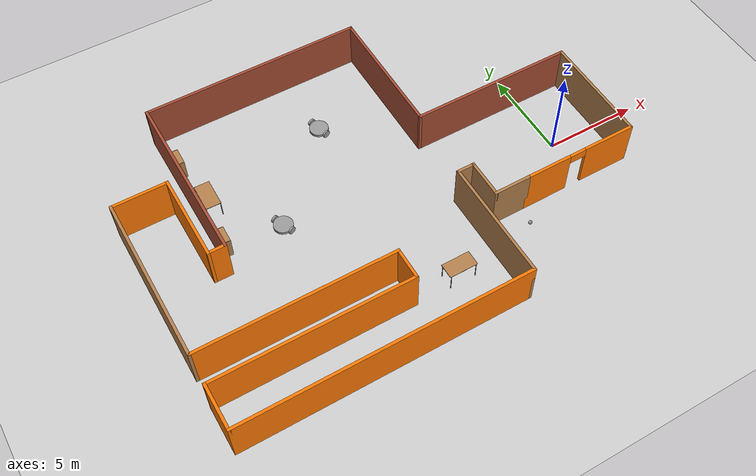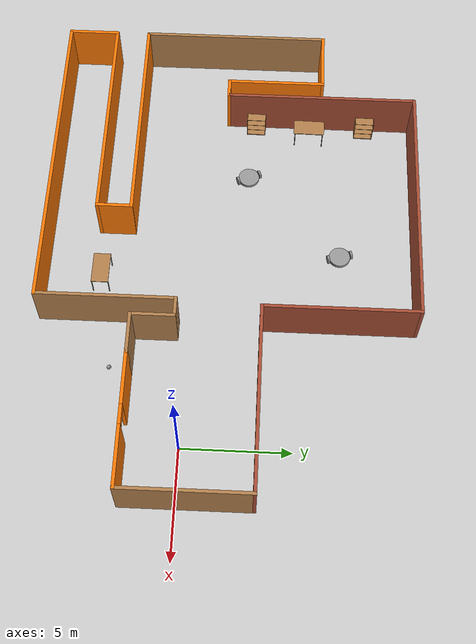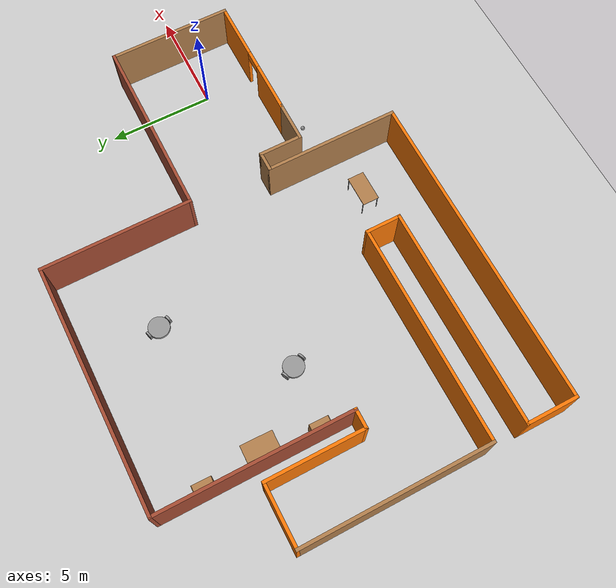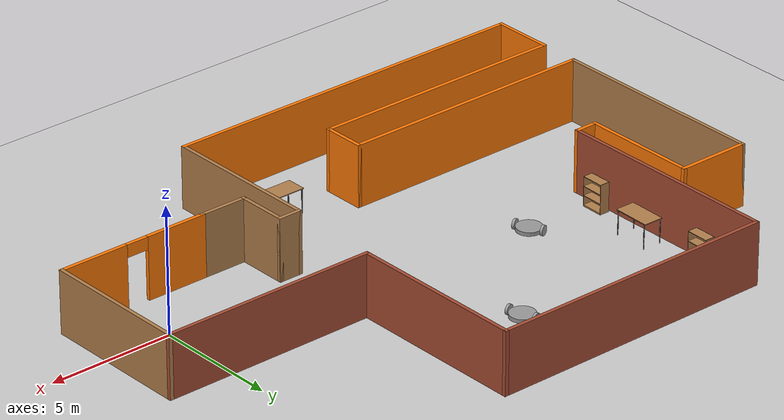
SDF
<sdf version="1.7">
 <world name="default">
  <plugin name="hello" filename="libhello.so"/>
  <light name="sun" type="directional">
   <pose>0 0 10 0 -0 0</pose>
   <diffuse>0.8 0.8 0.8 1</diffuse>
   <specular>0.2 0.2 0.2 1</specular>
   <attenuation>
    <range>1000</range>
    <constant>0.9</constant>
    <linear>0.01</linear>
    <quadratic>0.001</quadratic>
   </attenuation>
   <direction>-0.5 0.1 -0.9</direction>
   <spot><inner_angle>0</inner_angle><outer_angle>0</outer_angle><falloff>0</falloff></spot>
  </light>
  <model name="ground_plane">
   <static>1</static>
   <link name="link">
    <collision name="collision">
     <geometry><plane><normal>0 0 1</normal><size>100 100</size></plane></geometry>
     <surface>
      <contact><collide_bitmask>65535</collide_bitmask></contact>
      <friction><ode><mu>100</mu><mu2>50</mu2></ode></friction>
     </surface>
    </collision>
    <visual name="visual">
     <cast_shadows>0</cast_shadows>
     <geometry><plane><normal>0 0 1</normal><size>100 100</size></plane></geometry>
     <material>
      <script><uri>file://media/materials/scripts/gazebo.material</uri><name>Gazebo/Grey</name></script>
     </material>
    </visual>
   </link>
  </model>
  <gravity>0 0 -9.8</gravity>
  <magnetic_field>6e-06 2.3e-05 -4.2e-05</magnetic_field>
  <atmosphere type="adiabatic"/>
  <physics type="ode">
   <max_step_size>0.001</max_step_size>
   <real_time_factor>1</real_time_factor>
   <real_time_update_rate>1000</real_time_update_rate>
  </physics>
  <scene><ambient>0.4 0.4 0.4 1</ambient><background>0.7 0.7 0.7 1</background><shadows>1</shadows></scene>
  <spherical_coordinates>
   <surface_model>EARTH_WGS84</surface_model>
   <latitude_deg>0</latitude_deg>
   <longitude_deg>0</longitude_deg>
   <elevation>0</elevation>
   <heading_deg>0</heading_deg>
  </spherical_coordinates>
  <model name="Building">
   <pose>-9.30095 1.8624 0 0 -0 0</pose>
   <link name="Wall_0">
    <pose>8.9 -4.273 0 0 -0 0</pose>
    <visual name="Wall_0_Visual_0">
     <pose>-1.8625 0 1.25 0 -0 0</pose>
     <geometry><box><size>2.525 0.15 2.5</size></box></geometry>
     <material>
      <script><uri>file://media/materials/scripts/gazebo.material</uri><name>Gazebo/Grey</name></script>
      <ambient>0.996078 0.47451 0.0196078 1</ambient>
     </material>
     <meta><layer>0</layer></meta>
    </visual>
    <collision name="Wall_0_Collision_0">
     <geometry><box><size>2.525 0.15 2.5</size></box></geometry>
     <pose>-1.8625 0 1.25 0 -0 0</pose>
    </collision>
    <visual name="Wall_0_Visual_1">
     <pose>1.7125 0 1.25 0 -0 0</pose>
     <geometry><box><size>2.825 0.15 2.5</size></box></geometry>
     <material>
      <script><uri>file://media/materials/scripts/gazebo.material</uri><name>Gazebo/Grey</name></script>
      <ambient>0.996078 0.47451 0.0196078 1</ambient>
     </material>
     <meta><layer>0</layer></meta>
    </visual>
    <collision name="Wall_0_Collision_1">
     <geometry><box><size>2.825 0.15 2.5</size></box></geometry>
     <pose>1.7125 0 1.25 0 -0 0</pose>
    </collision>
    <visual name="Wall_0_Visual_2">
     <pose>-0.15 0 2.25 0 -0 0</pose>
     <geometry><box><size>0.9 0.15 0.5</size></box></geometry>
     <material>
      <script><uri>file://media/materials/scripts/gazebo.material</uri><name>Gazebo/Grey</name></script>
      <ambient>0.996078 0.47451 0.0196078 1</ambient>
     </material>
     <meta><layer>0</layer></meta>
    </visual>
    <collision name="Wall_0_Collision_2">
     <geometry><box><size>0.9 0.15 0.5</size></box></geometry>
     <pose>-0.15 0 2.25 0 -0 0</pose>
    </collision>
   </link>
   <link name="Wall_12">
    <collision name="Wall_12_Collision">
     <geometry><box><size>9 0.15 2.5</size></box></geometry>
     <pose>0 0 1.25 0 -0 0</pose>
    </collision>
    <visual name="Wall_12_Visual">
     <pose>0 0 1.25 0 -0 0</pose>
     <geometry><box><size>9 0.15 2.5</size></box></geometry>
     <material>
      <script><uri>file://media/materials/scripts/gazebo.material</uri><name>Gazebo/Wood</name></script>
      <ambient>0.996078 0.47451 0.0196078 1</ambient>
     </material>
     <meta><layer>0</layer></meta>
    </visual>
    <pose>-11.95 -0.275 0 0 -0 -1.5708</pose>
   </link>
   <link name="Wall_13">
    <collision name="Wall_13_Collision">
     <geometry><box><size>10.5 0.15 2.5</size></box></geometry>
     <pose>0 0 1.25 0 -0 0</pose>
    </collision>
    <visual name="Wall_13_Visual">
     <pose>0 0 1.25 0 -0 0</pose>
     <geometry><box><size>10.5 0.15 2.5</size></box></geometry>
     <material>
      <script><uri>file://media/materials/scripts/gazebo.material</uri><name>Gazebo/Grey</name></script>
      <ambient>0.996078 0.47451 0.0196078 1</ambient>
     </material>
     <meta><layer>0</layer></meta>
    </visual>
    <pose>-6.775 -4.7 0 0 -0 0</pose>
   </link>
   <link name="Wall_14">
    <collision name="Wall_14_Collision">
     <geometry><box><size>1.75 0.15 2.5</size></box></geometry>
     <pose>0 0 1.25 0 -0 0</pose>
    </collision>
    <visual name="Wall_14_Visual">
     <pose>0 0 1.25 0 -0 0</pose>
     <geometry><box><size>1.75 0.15 2.5</size></box></geometry>
     <material>
      <script><uri>file://media/materials/scripts/gazebo.material</uri><name>Gazebo/Grey</name></script>
      <ambient>0.996078 0.47451 0.0196078 1</ambient>
     </material>
     <meta><layer>0</layer></meta>
    </visual>
    <pose>-1.6 -5.5 0 0 -0 -1.5708</pose>
   </link>
   <link name="Wall_15">
    <collision name="Wall_15_Collision">
     <geometry><box><size>10.5 0.15 2.5</size></box></geometry>
     <pose>0 0 1.25 0 -0 0</pose>
    </collision>
    <visual name="Wall_15_Visual">
     <pose>0 0 1.25 0 -0 0</pose>
     <geometry><box><size>10.5 0.15 2.5</size></box></geometry>
     <material>
      <script><uri>file://media/materials/scripts/gazebo.material</uri><name>Gazebo/Grey</name></script>
      <ambient>0.996078 0.47451 0.0196078 1</ambient>
     </material>
     <meta><layer>0</layer></meta>
    </visual>
    <pose>-6.775 -6.3 0 0 -0 3.14159</pose>
   </link>
   <link name="Wall_16">
    <collision name="Wall_16_Collision">
     <geometry><box><size>2.5 0.15 2.5</size></box></geometry>
     <pose>0 0 1.25 0 -0 0</pose>
    </collision>
    <visual name="Wall_16_Visual">
     <pose>0 0 1.25 0 -0 0</pose>
     <geometry><box><size>2.5 0.15 2.5</size></box></geometry>
     <material>
      <script><uri>file://media/materials/scripts/gazebo.material</uri><name>Gazebo/Grey</name></script>
      <ambient>0.996078 0.47451 0.0196078 1</ambient>
     </material>
     <meta><layer>0</layer></meta>
    </visual>
    <pose>-11.95 -7.475 0 0 -0 -1.5708</pose>
   </link>
   <link name="Wall_17">
    <collision name="Wall_17_Collision">
     <geometry><box><size>15.25 0.15 2.5</size></box></geometry>
     <pose>0 0 1.25 0 -0 0</pose>
    </collision>
    <visual name="Wall_17_Visual">
     <pose>0 0 1.25 0 -0 0</pose>
     <geometry><box><size>15.25 0.15 2.5</size></box></geometry>
     <material>
      <script><uri>file://media/materials/scripts/gazebo.material</uri><name>Gazebo/Grey</name></script>
      <ambient>0.996078 0.47451 0.0196078 1</ambient>
     </material>
     <meta><layer>0</layer></meta>
    </visual>
    <pose>-4.4 -8.65 0 0 -0 0</pose>
   </link>
   <link name="Wall_18">
    <collision name="Wall_18_Collision">
     <geometry><box><size>6.5 0.15 2.5</size></box></geometry>
     <pose>0 0 1.25 0 -0 0</pose>
    </collision>
    <visual name="Wall_18_Visual">
     <pose>0 0 1.25 0 -0 0</pose>
     <geometry><box><size>6.5 0.15 2.5</size></box></geometry>
     <material>
      <script><uri>file://media/materials/scripts/gazebo.material</uri><name>Gazebo/Wood</name></script>
      <ambient>0.996078 0.47451 0.0196078 1</ambient>
     </material>
     <meta><layer>0</layer></meta>
    </visual>
    <pose>3.15 -5.475 0 0 -0 1.5708</pose>
   </link>
   <link name="Wall_19">
    <collision name="Wall_19_Collision">
     <geometry><box><size>1 0.15 2.5</size></box></geometry>
     <pose>0 0 1.25 0 -0 0</pose>
    </collision>
    <visual name="Wall_19_Visual">
     <pose>0 0 1.25 0 -0 0</pose>
     <geometry><box><size>1 0.15 2.5</size></box></geometry>
     <material>
      <script><uri>file://media/materials/scripts/gazebo.material</uri><name>Gazebo/Wood</name></script>
      <ambient>0.996078 0.47451 0.0196078 1</ambient>
     </material>
     <meta><layer>0</layer></meta>
    </visual>
    <pose>3.575 -2.3 0 0 -0 0</pose>
   </link>
   <link name="Wall_2">
    <collision name="Wall_2_Collision">
     <geometry><box><size>5.973 0.15 2.5</size></box></geometry>
     <pose>0 0 1.25 0 -0 0</pose>
    </collision>
    <visual name="Wall_2_Visual">
     <pose>0 0 1.25 0 -0 0</pose>
     <geometry><box><size>5.973 0.15 2.5</size></box></geometry>
     <material>
      <script><uri>file://media/materials/scripts/gazebo.material</uri><name>Gazebo/Wood</name></script>
      <ambient>0.996078 0.47451 0.0196078 1</ambient>
     </material>
     <meta><layer>0</layer></meta>
    </visual>
    <pose>11.95 -1.3615 0 0 -0 1.5708</pose>
   </link>
   <link name="Wall_20">
    <collision name="Wall_20_Collision">
     <geometry><box><size>2.123 0.15 2.5</size></box></geometry>
     <pose>0 0 1.25 0 -0 0</pose>
    </collision>
    <visual name="Wall_20_Visual">
     <pose>0 0 1.25 0 -0 0</pose>
     <geometry><box><size>2.123 0.15 2.5</size></box></geometry>
     <material>
      <script><uri>file://media/materials/scripts/gazebo.material</uri><name>Gazebo/Wood</name></script>
      <ambient>0.996078 0.47451 0.0196078 1</ambient>
     </material>
     <meta><layer>0</layer></meta>
    </visual>
    <pose>4 -3.2865 0 0 -0 -1.5708</pose>
   </link>
   <link name="Wall_21">
    <collision name="Wall_21_Collision">
     <geometry><box><size>2 0.15 2.5</size></box></geometry>
     <pose>0 0 1.25 0 -0 0</pose>
    </collision>
    <visual name="Wall_21_Visual">
     <pose>0 0 1.25 0 -0 0</pose>
     <geometry><box><size>2 0.15 2.5</size></box></geometry>
     <material>
      <script><uri>file://media/materials/scripts/gazebo.material</uri><name>Gazebo/Wood</name></script>
      <ambient>0.996078 0.47451 0.0196078 1</ambient>
     </material>
     <meta><layer>0</layer></meta>
    </visual>
    <pose>4.925 -4.273 0 0 -0 0</pose>
   </link>
   <link name="Wall_3">
    <collision name="Wall_3_Collision">
     <geometry><box><size>8.75 0.15 2.5</size></box></geometry>
     <pose>0 0 1.25 0 -0 0</pose>
    </collision>
    <visual name="Wall_3_Visual">
     <pose>0 0 1.25 0 -0 0</pose>
     <geometry><box><size>8.75 0.15 2.5</size></box></geometry>
     <material>
      <script><uri>file://media/materials/scripts/gazebo.material</uri><name>Gazebo/Bricks</name></script>
      <ambient>0.996078 0.47451 0.0196078 1</ambient>
     </material>
     <meta><layer>0</layer></meta>
    </visual>
    <pose>7.65 1.55 0 0 -0 3.14159</pose>
   </link>
   <link name="Wall_4">
    <collision name="Wall_4_Collision">
     <geometry><box><size>7.25 0.15 2.5</size></box></geometry>
     <pose>0 0 1.25 0 -0 0</pose>
    </collision>
    <visual name="Wall_4_Visual">
     <pose>0 0 1.25 0 -0 0</pose>
     <geometry><box><size>7.25 0.15 2.5</size></box></geometry>
     <material>
      <script><uri>file://media/materials/scripts/gazebo.material</uri><name>Gazebo/Bricks</name></script>
      <ambient>0.996078 0.47451 0.0196078 1</ambient>
     </material>
     <meta><layer>0</layer></meta>
    </visual>
    <pose>3.35 5.1 0 0 -0 1.5708</pose>
   </link>
   <link name="Wall_5">
    <collision name="Wall_5_Collision">
     <geometry><box><size>11.75 0.15 2.5</size></box></geometry>
     <pose>0 0 1.25 0 -0 0</pose>
    </collision>
    <visual name="Wall_5_Visual">
     <pose>0 0 1.25 0 -0 0</pose>
     <geometry><box><size>11.75 0.15 2.5</size></box></geometry>
     <material>
      <script><uri>file://media/materials/scripts/gazebo.material</uri><name>Gazebo/Bricks</name></script>
      <ambient>0.996078 0.47451 0.0196078 1</ambient>
     </material>
     <meta><layer>0</layer></meta>
    </visual>
    <pose>-2.45 8.65 0 0 -0 3.14159</pose>
   </link>
   <link name="Wall_6">
    <collision name="Wall_6_Collision">
     <geometry><box><size>9.25 0.15 2.5</size></box></geometry>
     <pose>0 0 1.25 0 -0 0</pose>
    </collision>
    <visual name="Wall_6_Visual">
     <pose>0 0 1.25 0 -0 0</pose>
     <geometry><box><size>9.25 0.15 2.5</size></box></geometry>
     <material>
      <script><uri>file://media/materials/scripts/gazebo.material</uri><name>Gazebo/Bricks</name></script>
      <ambient>0.996078 0.47451 0.0196078 1</ambient>
     </material>
     <meta><layer>0</layer></meta>
    </visual>
    <pose>-8.25 4.1 0 0 -0 -1.5708</pose>
   </link>
   <link name="Wall_7">
    <collision name="Wall_7_Collision">
     <geometry><box><size>1 0.15 2.5</size></box></geometry>
     <pose>0 0 1.25 0 -0 0</pose>
    </collision>
    <visual name="Wall_7_Visual">
     <pose>0 0 1.25 0 -0 0</pose>
     <geometry><box><size>1 0.15 2.5</size></box></geometry>
     <material>
      <script><uri>file://media/materials/scripts/gazebo.material</uri><name>Gazebo/Grey</name></script>
      <ambient>0.996078 0.47451 0.0196078 1</ambient>
     </material>
     <meta><layer>0</layer></meta>
    </visual>
    <pose>-8.675 -0.45 0 0 -0 3.14159</pose>
   </link>
   <link name="Wall_8">
    <collision name="Wall_8_Collision">
     <geometry><box><size>4.75 0.15 2.5</size></box></geometry>
     <pose>0 0 1.25 0 -0 0</pose>
    </collision>
    <visual name="Wall_8_Visual">
     <pose>0 0 1.25 0 -0 0</pose>
     <geometry><box><size>4.75 0.15 2.5</size></box></geometry>
     <material>
      <script><uri>file://media/materials/scripts/gazebo.material</uri><name>Gazebo/Grey</name></script>
      <ambient>0.996078 0.47451 0.0196078 1</ambient>
     </material>
     <meta><layer>0</layer></meta>
    </visual>
    <pose>-9.1 1.85 0 0 -0 1.5708</pose>
   </link>
   <link name="Wall_9">
    <collision name="Wall_9_Collision">
     <geometry><box><size>3 0.15 2.5</size></box></geometry>
     <pose>0 0 1.25 0 -0 0</pose>
    </collision>
    <visual name="Wall_9_Visual">
     <pose>0 0 1.25 0 -0 0</pose>
     <geometry><box><size>3 0.15 2.5</size></box></geometry>
     <material>
      <script><uri>file://media/materials/scripts/gazebo.material</uri><name>Gazebo/Grey</name></script>
      <ambient>0.996078 0.47451 0.0196078 1</ambient>
     </material>
     <meta><layer>0</layer></meta>
    </visual>
    <pose>-10.525 4.15 0 0 -0 3.14159</pose>
   </link>
   <static>1</static>
  </model>
  <model name="table">
   <static>1</static>
   <link name="link">
    <collision name="surface">
     <pose>0 0 1 0 -0 0</pose>
     <geometry><box><size>1.5 0.8 0.03</size></box></geometry>
     <surface><friction><ode><mu>0.6</mu><mu2>0.6</mu2></ode></friction></surface>
    </collision>
    <visual name="visual1">
     <pose>0 0 1 0 -0 0</pose>
     <geometry><box><size>1.5 0.8 0.03</size></box></geometry>
     <material>
      <script><uri>file://media/materials/scripts/gazebo.material</uri><name>Gazebo/Wood</name></script>
     </material>
    </visual>
    <collision name="front_left_leg">
     <pose>0.68 0.38 0.5 0 -0 0</pose>
     <geometry><cylinder><radius>0.02</radius><length>1</length></cylinder></geometry>
    </collision>
    <visual name="front_left_leg">
     <pose>0.68 0.38 0.5 0 -0 0</pose>
     <geometry><cylinder><radius>0.02</radius><length>1</length></cylinder></geometry>
     <material>
      <script><uri>file://media/materials/scripts/gazebo.material</uri><name>Gazebo/Grey</name></script>
     </material>
    </visual>
    <collision name="front_right_leg">
     <pose>0.68 -0.38 0.5 0 -0 0</pose>
     <geometry><cylinder><radius>0.02</radius><length>1</length></cylinder></geometry>
    </collision>
    <visual name="front_right_leg">
     <pose>0.68 -0.38 0.5 0 -0 0</pose>
     <geometry><cylinder><radius>0.02</radius><length>1</length></cylinder></geometry>
     <material>
      <script><uri>file://media/materials/scripts/gazebo.material</uri><name>Gazebo/Grey</name></script>
     </material>
    </visual>
    <collision name="back_right_leg">
     <pose>-0.68 -0.38 0.5 0 -0 0</pose>
     <geometry><cylinder><radius>0.02</radius><length>1</length></cylinder></geometry>
    </collision>
    <visual name="back_right_leg">
     <pose>-0.68 -0.38 0.5 0 -0 0</pose>
     <geometry><cylinder><radius>0.02</radius><length>1</length></cylinder></geometry>
     <material>
      <script><uri>file://media/materials/scripts/gazebo.material</uri><name>Gazebo/Grey</name></script>
     </material>
    </visual>
    <collision name="back_left_leg">
     <pose>-0.68 0.38 0.5 0 -0 0</pose>
     <geometry><cylinder><radius>0.02</radius><length>1</length></cylinder></geometry>
    </collision>
    <visual name="back_left_leg">
     <pose>-0.68 0.38 0.5 0 -0 0</pose>
     <geometry><cylinder><radius>0.02</radius><length>1</length></cylinder></geometry>
     <material>
      <script><uri>file://media/materials/scripts/gazebo.material</uri><name>Gazebo/Grey</name></script>
     </material>
    </visual>
   </link>
   <pose>-8.36114 -4.14243 0 0 -0 0</pose>
  </model>
  <model name="bookshelf">
   <static>1</static>
   <link name="link">
    <inertial><mass>1</mass></inertial>
    <collision name="back">
     <pose>0 0.005 0.6 0 -0 0</pose>
     <geometry><box><size>0.9 0.01 1.2</size></box></geometry>
    </collision>
    <visual name="visual1">
     <pose>0 0.005 0.6 0 -0 0</pose>
     <geometry><box><size>0.9 0.01 1.2</size></box></geometry>
     <material>
      <script><uri>file://media/materials/scripts/gazebo.material</uri><name>Gazebo/Wood</name></script>
     </material>
    </visual>
    <collision name="left_side">
     <pose>0.45 -0.195 0.6 0 -0 0</pose>
     <geometry><box><size>0.02 0.4 1.2</size></box></geometry>
    </collision>
    <visual name="visual2">
     <pose>0.45 -0.195 0.6 0 -0 0</pose>
     <geometry><box><size>0.02 0.4 1.2</size></box></geometry>
     <material>
      <script><uri>file://media/materials/scripts/gazebo.material</uri><name>Gazebo/Wood</name></script>
     </material>
    </visual>
    <collision name="right_side">
     <pose>-0.45 -0.195 0.6 0 -0 0</pose>
     <geometry><box><size>0.02 0.4 1.2</size></box></geometry>
    </collision>
    <visual name="visual3">
     <pose>-0.45 -0.195 0.6 0 -0 0</pose>
     <geometry><box><size>0.02 0.4 1.2</size></box></geometry>
     <material>
      <script><uri>file://media/materials/scripts/gazebo.material</uri><name>Gazebo/Wood</name></script>
     </material>
    </visual>
    <collision name="bottom">
     <pose>0 -0.195 0.03 0 -0 0</pose>
     <geometry><box><size>0.88 0.4 0.06</size></box></geometry>
    </collision>
    <visual name="visual4">
     <pose>0 -0.195 0.03 0 -0 0</pose>
     <geometry><box><size>0.88 0.4 0.06</size></box></geometry>
     <material>
      <script><uri>file://media/materials/scripts/gazebo.material</uri><name>Gazebo/Wood</name></script>
     </material>
    </visual>
    <collision name="top">
     <pose>0 -0.195 1.19 0 -0 0</pose>
     <geometry><box><size>0.88 0.4 0.02</size></box></geometry>
    </collision>
    <visual name="visual5">
     <pose>0 -0.195 1.19 0 -0 0</pose>
     <geometry><box><size>0.88 0.4 0.02</size></box></geometry>
     <material>
      <script><uri>file://media/materials/scripts/gazebo.material</uri><name>Gazebo/Wood</name></script>
     </material>
    </visual>
    <collision name="low_shelf">
     <pose>0 -0.195 0.43 0 -0 0</pose>
     <geometry><box><size>0.88 0.4 0.02</size></box></geometry>
    </collision>
    <visual name="visual6">
     <pose>0 -0.195 0.43 0 -0 0</pose>
     <geometry><box><size>0.88 0.4 0.02</size></box></geometry>
     <material>
      <script><uri>file://media/materials/scripts/gazebo.material</uri><name>Gazebo/Wood</name></script>
     </material>
    </visual>
    <collision name="high_shelf">
     <pose>0 -0.195 0.8 0 -0 0</pose>
     <geometry><box><size>0.88 0.4 0.02</size></box></geometry>
    </collision>
    <visual name="visual7">
     <pose>0 -0.195 0.8 0 -0 0</pose>
     <geometry><box><size>0.88 0.4 0.02</size></box></geometry>
     <material>
      <script><uri>file://media/materials/scripts/gazebo.material</uri><name>Gazebo/Wood</name></script>
     </material>
    </visual>
   </link>
   <pose>-17.3727 8.20775 0 0 -0 1.55</pose>
  </model>
  <model name="bookshelf_0">
   <static>1</static>
   <link name="link">
    <inertial><mass>1</mass></inertial>
    <collision name="back">
     <pose>0 0.005 0.6 0 -0 0</pose>
     <geometry><box><size>0.9 0.01 1.2</size></box></geometry>
    </collision>
    <visual name="visual1">
     <pose>0 0.005 0.6 0 -0 0</pose>
     <geometry><box><size>0.9 0.01 1.2</size></box></geometry>
     <material>
      <script><uri>file://media/materials/scripts/gazebo.material</uri><name>Gazebo/Wood</name></script>
     </material>
    </visual>
    <collision name="left_side">
     <pose>0.45 -0.195 0.6 0 -0 0</pose>
     <geometry><box><size>0.02 0.4 1.2</size></box></geometry>
    </collision>
    <visual name="visual2">
     <pose>0.45 -0.195 0.6 0 -0 0</pose>
     <geometry><box><size>0.02 0.4 1.2</size></box></geometry>
     <material>
      <script><uri>file://media/materials/scripts/gazebo.material</uri><name>Gazebo/Wood</name></script>
     </material>
    </visual>
    <collision name="right_side">
     <pose>-0.45 -0.195 0.6 0 -0 0</pose>
     <geometry><box><size>0.02 0.4 1.2</size></box></geometry>
    </collision>
    <visual name="visual3">
     <pose>-0.45 -0.195 0.6 0 -0 0</pose>
     <geometry><box><size>0.02 0.4 1.2</size></box></geometry>
     <material>
      <script><uri>file://media/materials/scripts/gazebo.material</uri><name>Gazebo/Wood</name></script>
     </material>
    </visual>
    <collision name="bottom">
     <pose>0 -0.195 0.03 0 -0 0</pose>
     <geometry><box><size>0.88 0.4 0.06</size></box></geometry>
    </collision>
    <visual name="visual4">
     <pose>0 -0.195 0.03 0 -0 0</pose>
     <geometry><box><size>0.88 0.4 0.06</size></box></geometry>
     <material>
      <script><uri>file://media/materials/scripts/gazebo.material</uri><name>Gazebo/Wood</name></script>
     </material>
    </visual>
    <collision name="top">
     <pose>0 -0.195 1.19 0 -0 0</pose>
     <geometry><box><size>0.88 0.4 0.02</size></box></geometry>
    </collision>
    <visual name="visual5">
     <pose>0 -0.195 1.19 0 -0 0</pose>
     <geometry><box><size>0.88 0.4 0.02</size></box></geometry>
     <material>
      <script><uri>file://media/materials/scripts/gazebo.material</uri><name>Gazebo/Wood</name></script>
     </material>
    </visual>
    <collision name="low_shelf">
     <pose>0 -0.195 0.43 0 -0 0</pose>
     <geometry><box><size>0.88 0.4 0.02</size></box></geometry>
    </collision>
    <visual name="visual6">
     <pose>0 -0.195 0.43 0 -0 0</pose>
     <geometry><box><size>0.88 0.4 0.02</size></box></geometry>
     <material>
      <script><uri>file://media/materials/scripts/gazebo.material</uri><name>Gazebo/Wood</name></script>
     </material>
    </visual>
    <collision name="high_shelf">
     <pose>0 -0.195 0.8 0 -0 0</pose>
     <geometry><box><size>0.88 0.4 0.02</size></box></geometry>
    </collision>
    <visual name="visual7">
     <pose>0 -0.195 0.8 0 -0 0</pose>
     <geometry><box><size>0.88 0.4 0.02</size></box></geometry>
     <material>
      <script><uri>file://media/materials/scripts/gazebo.material</uri><name>Gazebo/Wood</name></script>
     </material>
    </visual>
   </link>
   <pose>-17.3882 2.81827 0 0 -0 1.55</pose>
  </model>
  <model name="table_0">
   <static>1</static>
   <link name="link">
    <collision name="surface">
     <pose>0 0 1 0 -0 0</pose>
     <geometry><box><size>1.5 0.8 0.03</size></box></geometry>
     <surface><friction><ode><mu>0.6</mu><mu2>0.6</mu2></ode></friction></surface>
    </collision>
    <visual name="visual1">
     <pose>0 0 1 0 -0 0</pose>
     <geometry><box><size>1.5 0.8 0.03</size></box></geometry>
     <material>
      <script><uri>file://media/materials/scripts/gazebo.material</uri><name>Gazebo/Wood</name></script>
     </material>
    </visual>
    <collision name="front_left_leg">
     <pose>0.68 0.38 0.5 0 -0 0</pose>
     <geometry><cylinder><radius>0.02</radius><length>1</length></cylinder></geometry>
    </collision>
    <visual name="front_left_leg">
     <pose>0.68 0.38 0.5 0 -0 0</pose>
     <geometry><cylinder><radius>0.02</radius><length>1</length></cylinder></geometry>
     <material>
      <script><uri>file://media/materials/scripts/gazebo.material</uri><name>Gazebo/Grey</name></script>
     </material>
    </visual>
    <collision name="front_right_leg">
     <pose>0.68 -0.38 0.5 0 -0 0</pose>
     <geometry><cylinder><radius>0.02</radius><length>1</length></cylinder></geometry>
    </collision>
    <visual name="front_right_leg">
     <pose>0.68 -0.38 0.5 0 -0 0</pose>
     <geometry><cylinder><radius>0.02</radius><length>1</length></cylinder></geometry>
     <material>
      <script><uri>file://media/materials/scripts/gazebo.material</uri><name>Gazebo/Grey</name></script>
     </material>
    </visual>
    <collision name="back_right_leg">
     <pose>-0.68 -0.38 0.5 0 -0 0</pose>
     <geometry><cylinder><radius>0.02</radius><length>1</length></cylinder></geometry>
    </collision>
    <visual name="back_right_leg">
     <pose>-0.68 -0.38 0.5 0 -0 0</pose>
     <geometry><cylinder><radius>0.02</radius><length>1</length></cylinder></geometry>
     <material>
      <script><uri>file://media/materials/scripts/gazebo.material</uri><name>Gazebo/Grey</name></script>
     </material>
    </visual>
    <collision name="back_left_leg">
     <pose>-0.68 0.38 0.5 0 -0 0</pose>
     <geometry><cylinder><radius>0.02</radius><length>1</length></cylinder></geometry>
    </collision>
    <visual name="back_left_leg">
     <pose>-0.68 0.38 0.5 0 -0 0</pose>
     <geometry><cylinder><radius>0.02</radius><length>1</length></cylinder></geometry>
     <material>
      <script><uri>file://media/materials/scripts/gazebo.material</uri><name>Gazebo/Grey</name></script>
     </material>
    </visual>
   </link>
   <pose>-16.8132 5.44722 0 0 -0 1.55</pose>
  </model>
  <model name="uRobot">
   <link name="link_4">
    <inertial>
     <mass>1</mass>
     <inertia><ixx>0.145833</ixx><ixy>0</ixy><ixz>0</ixz><iyy>0.145833</iyy><iyz>0</iyz><izz>0.125</izz></inertia>
    </inertial>
    <pose>0 0 -0.021667 0 -0 0</pose>
    <visual name="visual">
     <geometry><cylinder><radius>0.5</radius><length>0.15</length></cylinder></geometry>
     <material>
      <lighting>1</lighting>
      <script><uri>file://media/materials/scripts/gazebo.material</uri><name>Gazebo/Grey</name></script>
      <shader type="pixel"><normal_map>__default__</normal_map></shader>
      <ambient>0.3 0.3 0.3 1</ambient>
      <diffuse>0.7 0.7 0.7 1</diffuse>
      <specular>0.01 0.01 0.01 1</specular>
      <emissive>0 0 0 1</emissive>
     </material>
    </visual>
    <collision name="collision">
     <geometry><cylinder><radius>0.5</radius><length>0.15</length></cylinder></geometry>
     <surface>
      <friction>
       <ode><mu>1</mu><mu2>1</mu2><fdir1>0 0 0</fdir1><slip1>0</slip1><slip2>0</slip2></ode>
       <torsional>
        <coefficient>1</coefficient>
        <patch_radius>0</patch_radius>
        <surface_radius>0</surface_radius>
        <use_patch_radius>1</use_patch_radius>
        <ode><slip>0</slip></ode>
       </torsional>
      </friction>
      <bounce><restitution_coefficient>0</restitution_coefficient><threshold>1e+06</threshold></bounce>
      <contact>
       <collide_without_contact>0</collide_without_contact>
       <collide_without_contact_bitmask>1</collide_without_contact_bitmask>
       <collide_bitmask>1</collide_bitmask>
       <ode>
        <soft_cfm>0</soft_cfm>
        <soft_erp>0.2</soft_erp>
        <kp>1e+13</kp>
        <kd>1</kd>
        <max_vel>0.01</max_vel>
        <min_depth>0</min_depth>
       </ode>
       <bullet>
        <split_impulse>1</split_impulse>
        <split_impulse_penetration_threshold>-0.01</split_impulse_penetration_threshold>
        <soft_cfm>0</soft_cfm>
        <soft_erp>0.2</soft_erp>
        <kp>1e+13</kp>
        <kd>1</kd>
       </bullet>
      </contact>
     </surface>
    </collision>
   </link>
   <link name="link_6">
    <inertial>
     <mass>1</mass>
     <inertia><ixx>0.145833</ixx><ixy>0</ixy><ixz>0</ixz><iyy>0.145833</iyy><iyz>0</iyz><izz>0.125</izz></inertia>
    </inertial>
    <pose>0 0.55084 0.010833 0 -0 0</pose>
    <visual name="visual">
     <pose>0 0 0 1.575 -0 0</pose>
     <geometry><cylinder><radius>0.2</radius><length>0.1</length></cylinder></geometry>
     <material>
      <lighting>1</lighting>
      <script><uri>file://media/materials/scripts/gazebo.material</uri><name>Gazebo/Grey</name></script>
      <shader type="pixel"><normal_map>__default__</normal_map></shader>
      <ambient>0.3 0.3 0.3 1</ambient>
      <diffuse>0.7 0.7 0.7 1</diffuse>
      <specular>0.01 0.01 0.01 1</specular>
      <emissive>0 0 0 1</emissive>
     </material>
    </visual>
    <collision name="collision">
     <pose>0 0 0 1.575 -0 0</pose>
     <geometry><cylinder><radius>0.2</radius><length>0.1</length></cylinder></geometry>
     <surface>
      <friction>
       <ode><mu>1</mu><mu2>1</mu2><fdir1>0 0 0</fdir1><slip1>0</slip1><slip2>0</slip2></ode>
       <torsional>
        <coefficient>1</coefficient>
        <patch_radius>0</patch_radius>
        <surface_radius>0</surface_radius>
        <use_patch_radius>1</use_patch_radius>
        <ode><slip>0</slip></ode>
       </torsional>
      </friction>
      <bounce><restitution_coefficient>0</restitution_coefficient><threshold>1e+06</threshold></bounce>
      <contact>
       <collide_without_contact>0</collide_without_contact>
       <collide_without_contact_bitmask>1</collide_without_contact_bitmask>
       <collide_bitmask>1</collide_bitmask>
       <ode>
        <soft_cfm>0</soft_cfm>
        <soft_erp>0.2</soft_erp>
        <kp>1e+13</kp>
        <kd>1</kd>
        <max_vel>0.01</max_vel>
        <min_depth>0</min_depth>
       </ode>
       <bullet>
        <split_impulse>1</split_impulse>
        <split_impulse_penetration_threshold>-0.01</split_impulse_penetration_threshold>
        <soft_cfm>0</soft_cfm>
        <soft_erp>0.2</soft_erp>
        <kp>1e+13</kp>
        <kd>1</kd>
       </bullet>
      </contact>
     </surface>
    </collision>
   </link>
   <link name="link_6_clone">
    <inertial>
     <mass>1</mass>
     <inertia><ixx>0.145833</ixx><ixy>0</ixy><ixz>0</ixz><iyy>0.145833</iyy><iyz>0</iyz><izz>0.125</izz></inertia>
    </inertial>
    <pose>0 -0.55084 0.010833 0 -0 0</pose>
    <visual name="visual">
     <pose>0 0 0 1.575 -0 0</pose>
     <geometry><cylinder><radius>0.2</radius><length>0.1</length></cylinder></geometry>
     <material>
      <lighting>1</lighting>
      <script><uri>file://media/materials/scripts/gazebo.material</uri><name>Gazebo/Grey</name></script>
      <shader type="pixel"><normal_map>__default__</normal_map></shader>
      <ambient>0.3 0.3 0.3 1</ambient>
      <diffuse>0.7 0.7 0.7 1</diffuse>
      <specular>0.01 0.01 0.01 1</specular>
      <emissive>0 0 0 1</emissive>
     </material>
    </visual>
    <collision name="collision">
     <pose>0 0 0 1.575 -0 0</pose>
     <geometry><cylinder><radius>0.2</radius><length>0.1</length></cylinder></geometry>
     <surface>
      <friction>
       <ode><mu>1</mu><mu2>1</mu2><fdir1>0 0 0</fdir1><slip1>0</slip1><slip2>0</slip2></ode>
       <torsional>
        <coefficient>1</coefficient>
        <patch_radius>0</patch_radius>
        <surface_radius>0</surface_radius>
        <use_patch_radius>1</use_patch_radius>
        <ode><slip>0</slip></ode>
       </torsional>
      </friction>
      <bounce><restitution_coefficient>0</restitution_coefficient><threshold>1e+06</threshold></bounce>
      <contact>
       <collide_without_contact>0</collide_without_contact>
       <collide_without_contact_bitmask>1</collide_without_contact_bitmask>
       <collide_bitmask>1</collide_bitmask>
       <ode>
        <soft_cfm>0</soft_cfm>
        <soft_erp>0.2</soft_erp>
        <kp>1e+13</kp>
        <kd>1</kd>
        <max_vel>0.01</max_vel>
        <min_depth>0</min_depth>
       </ode>
       <bullet>
        <split_impulse>1</split_impulse>
        <split_impulse_penetration_threshold>-0.01</split_impulse_penetration_threshold>
        <soft_cfm>0</soft_cfm>
        <soft_erp>0.2</soft_erp>
        <kp>1e+13</kp>
        <kd>1</kd>
       </bullet>
      </contact>
     </surface>
    </collision>
   </link>
   <joint name="link_4_JOINT_5" type="revolute">
    <parent>link_4</parent>
    <child>link_6</child>
    <axis>
     <xyz>0 1 0</xyz>
     <limit>
      <lower>-1.79769e+308</lower>
      <upper>1.79769e+308</upper>
      <effort>-1</effort>
      <velocity>-1</velocity>
     </limit>
     <dynamics>
      <spring_reference>0</spring_reference>
      <spring_stiffness>0</spring_stiffness>
      <damping>0</damping>
     </dynamics>
    </axis>
    <physics>
     <ode><limit><cfm>0</cfm><erp>0.2</erp></limit><suspension><cfm>0</cfm><erp>0.2</erp></suspension></ode>
    </physics>
   </joint>
   <joint name="link_4_JOINT_6" type="revolute">
    <parent>link_4</parent>
    <child>link_6_clone</child>
    <axis>
     <xyz>0 1 0</xyz>
     <limit>
      <lower>-1.79769e+308</lower>
      <upper>1.79769e+308</upper>
      <effort>-1</effort>
      <velocity>-1</velocity>
     </limit>
     <dynamics>
      <spring_reference>0</spring_reference>
      <spring_stiffness>0</spring_stiffness>
      <damping>0</damping>
     </dynamics>
    </axis>
    <physics>
     <ode><limit><cfm>0</cfm><erp>0.2</erp></limit><suspension><cfm>0</cfm><erp>0.2</erp></suspension></ode>
    </physics>
   </joint>
   <static>0</static>
   <pose>-14.2269 2.54616 0.18926 1.6e-05 -0.000124 0.397422</pose>
  </model>
  <model name="uRobot_0">
   <link name="link_4">
    <inertial>
     <mass>1</mass>
     <inertia><ixx>0.145833</ixx><ixy>0</ixy><ixz>0</ixz><iyy>0.145833</iyy><iyz>0</iyz><izz>0.125</izz></inertia>
    </inertial>
    <pose>0 0 -0.021667 0 -0 0</pose>
    <visual name="visual">
     <geometry><cylinder><radius>0.5</radius><length>0.15</length></cylinder></geometry>
     <material>
      <lighting>1</lighting>
      <script><uri>file://media/materials/scripts/gazebo.material</uri><name>Gazebo/Grey</name></script>
      <shader type="pixel"><normal_map>__default__</normal_map></shader>
      <ambient>0.3 0.3 0.3 1</ambient>
      <diffuse>0.7 0.7 0.7 1</diffuse>
      <specular>0.01 0.01 0.01 1</specular>
      <emissive>0 0 0 1</emissive>
     </material>
    </visual>
    <collision name="collision">
     <geometry><cylinder><radius>0.5</radius><length>0.15</length></cylinder></geometry>
     <surface>
      <friction>
       <ode><mu>1</mu><mu2>1</mu2><fdir1>0 0 0</fdir1><slip1>0</slip1><slip2>0</slip2></ode>
       <torsional>
        <coefficient>1</coefficient>
        <patch_radius>0</patch_radius>
        <surface_radius>0</surface_radius>
        <use_patch_radius>1</use_patch_radius>
        <ode><slip>0</slip></ode>
       </torsional>
      </friction>
      <bounce><restitution_coefficient>0</restitution_coefficient><threshold>1e+06</threshold></bounce>
      <contact>
       <collide_without_contact>0</collide_without_contact>
       <collide_without_contact_bitmask>1</collide_without_contact_bitmask>
       <collide_bitmask>1</collide_bitmask>
       <ode>
        <soft_cfm>0</soft_cfm>
        <soft_erp>0.2</soft_erp>
        <kp>1e+13</kp>
        <kd>1</kd>
        <max_vel>0.01</max_vel>
        <min_depth>0</min_depth>
       </ode>
       <bullet>
        <split_impulse>1</split_impulse>
        <split_impulse_penetration_threshold>-0.01</split_impulse_penetration_threshold>
        <soft_cfm>0</soft_cfm>
        <soft_erp>0.2</soft_erp>
        <kp>1e+13</kp>
        <kd>1</kd>
       </bullet>
      </contact>
     </surface>
    </collision>
   </link>
   <link name="link_6">
    <inertial>
     <mass>1</mass>
     <inertia><ixx>0.145833</ixx><ixy>0</ixy><ixz>0</ixz><iyy>0.145833</iyy><iyz>0</iyz><izz>0.125</izz></inertia>
    </inertial>
    <pose>0 0.55084 0.010833 0 -0 0</pose>
    <visual name="visual">
     <pose>0 0 0 1.575 -0 0</pose>
     <geometry><cylinder><radius>0.2</radius><length>0.1</length></cylinder></geometry>
     <material>
      <lighting>1</lighting>
      <script><uri>file://media/materials/scripts/gazebo.material</uri><name>Gazebo/Grey</name></script>
      <shader type="pixel"><normal_map>__default__</normal_map></shader>
      <ambient>0.3 0.3 0.3 1</ambient>
      <diffuse>0.7 0.7 0.7 1</diffuse>
      <specular>0.01 0.01 0.01 1</specular>
      <emissive>0 0 0 1</emissive>
     </material>
    </visual>
    <collision name="collision">
     <pose>0 0 0 1.575 -0 0</pose>
     <geometry><cylinder><radius>0.2</radius><length>0.1</length></cylinder></geometry>
     <surface>
      <friction>
       <ode><mu>1</mu><mu2>1</mu2><fdir1>0 0 0</fdir1><slip1>0</slip1><slip2>0</slip2></ode>
       <torsional>
        <coefficient>1</coefficient>
        <patch_radius>0</patch_radius>
        <surface_radius>0</surface_radius>
        <use_patch_radius>1</use_patch_radius>
        <ode><slip>0</slip></ode>
       </torsional>
      </friction>
      <bounce><restitution_coefficient>0</restitution_coefficient><threshold>1e+06</threshold></bounce>
      <contact>
       <collide_without_contact>0</collide_without_contact>
       <collide_without_contact_bitmask>1</collide_without_contact_bitmask>
       <collide_bitmask>1</collide_bitmask>
       <ode>
        <soft_cfm>0</soft_cfm>
        <soft_erp>0.2</soft_erp>
        <kp>1e+13</kp>
        <kd>1</kd>
        <max_vel>0.01</max_vel>
        <min_depth>0</min_depth>
       </ode>
       <bullet>
        <split_impulse>1</split_impulse>
        <split_impulse_penetration_threshold>-0.01</split_impulse_penetration_threshold>
        <soft_cfm>0</soft_cfm>
        <soft_erp>0.2</soft_erp>
        <kp>1e+13</kp>
        <kd>1</kd>
       </bullet>
      </contact>
     </surface>
    </collision>
   </link>
   <link name="link_6_clone">
    <inertial>
     <mass>1</mass>
     <inertia><ixx>0.145833</ixx><ixy>0</ixy><ixz>0</ixz><iyy>0.145833</iyy><iyz>0</iyz><izz>0.125</izz></inertia>
    </inertial>
    <pose>0 -0.55084 0.010833 0 -0 0</pose>
    <visual name="visual">
     <pose>0 0 0 1.575 -0 0</pose>
     <geometry><cylinder><radius>0.2</radius><length>0.1</length></cylinder></geometry>
     <material>
      <lighting>1</lighting>
      <script><uri>file://media/materials/scripts/gazebo.material</uri><name>Gazebo/Grey</name></script>
      <shader type="pixel"><normal_map>__default__</normal_map></shader>
      <ambient>0.3 0.3 0.3 1</ambient>
      <diffuse>0.7 0.7 0.7 1</diffuse>
      <specular>0.01 0.01 0.01 1</specular>
      <emissive>0 0 0 1</emissive>
     </material>
    </visual>
    <collision name="collision">
     <pose>0 0 0 1.575 -0 0</pose>
     <geometry><cylinder><radius>0.2</radius><length>0.1</length></cylinder></geometry>
     <surface>
      <friction>
       <ode><mu>1</mu><mu2>1</mu2><fdir1>0 0 0</fdir1><slip1>0</slip1><slip2>0</slip2></ode>
       <torsional>
        <coefficient>1</coefficient>
        <patch_radius>0</patch_radius>
        <surface_radius>0</surface_radius>
        <use_patch_radius>1</use_patch_radius>
        <ode><slip>0</slip></ode>
       </torsional>
      </friction>
      <bounce><restitution_coefficient>0</restitution_coefficient><threshold>1e+06</threshold></bounce>
      <contact>
       <collide_without_contact>0</collide_without_contact>
       <collide_without_contact_bitmask>1</collide_without_contact_bitmask>
       <collide_bitmask>1</collide_bitmask>
       <ode>
        <soft_cfm>0</soft_cfm>
        <soft_erp>0.2</soft_erp>
        <kp>1e+13</kp>
        <kd>1</kd>
        <max_vel>0.01</max_vel>
        <min_depth>0</min_depth>
       </ode>
       <bullet>
        <split_impulse>1</split_impulse>
        <split_impulse_penetration_threshold>-0.01</split_impulse_penetration_threshold>
        <soft_cfm>0</soft_cfm>
        <soft_erp>0.2</soft_erp>
        <kp>1e+13</kp>
        <kd>1</kd>
       </bullet>
      </contact>
     </surface>
    </collision>
   </link>
   <joint name="link_4_JOINT_5" type="revolute">
    <parent>link_4</parent>
    <child>link_6</child>
    <axis>
     <xyz>0 1 0</xyz>
     <limit>
      <lower>-1.79769e+308</lower>
      <upper>1.79769e+308</upper>
      <effort>-1</effort>
      <velocity>-1</velocity>
     </limit>
     <dynamics>
      <spring_reference>0</spring_reference>
      <spring_stiffness>0</spring_stiffness>
      <damping>0</damping>
     </dynamics>
    </axis>
    <physics>
     <ode><limit><cfm>0</cfm><erp>0.2</erp></limit><suspension><cfm>0</cfm><erp>0.2</erp></suspension></ode>
    </physics>
   </joint>
   <joint name="link_4_JOINT_6" type="revolute">
    <parent>link_4</parent>
    <child>link_6_clone</child>
    <axis>
     <xyz>0 1 0</xyz>
     <limit>
      <lower>-1.79769e+308</lower>
      <upper>1.79769e+308</upper>
      <effort>-1</effort>
      <velocity>-1</velocity>
     </limit>
     <dynamics>
      <spring_reference>0</spring_reference>
      <spring_stiffness>0</spring_stiffness>
      <damping>0</damping>
     </dynamics>
    </axis>
    <physics>
     <ode><limit><cfm>0</cfm><erp>0.2</erp></limit><suspension><cfm>0</cfm><erp>0.2</erp></suspension></ode>
    </physics>
   </joint>
   <static>0</static>
   <pose>-9.86813 7.02858 0.189322 8e-06 0.000206 0.267331</pose>
  </model>
  <model name="my_ball">
   <link name="link_0">
    <inertial>
     <mass>1</mass>
     <inertia><ixx>0.1</ixx><ixy>0</ixy><ixz>0</ixz><iyy>0.1</iyy><iyz>0</iyz><izz>0.1</izz></inertia>
    </inertial>
    <visual name="visual">
     <geometry><sphere><radius>0.1</radius></sphere></geometry>
     <material>
      <lighting>1</lighting>
      <script><uri>file://media/materials/scripts/gazebo.material</uri><name>Gazebo/Grey</name></script>
      <shader type="pixel"><normal_map>__default__</normal_map></shader>
      <ambient>1 1 1 1</ambient>
      <diffuse>1 1 1 1</diffuse>
      <specular>1 1 1 1</specular>
      <emissive>1 1 1 1</emissive>
     </material>
    </visual>
    <collision name="collision">
     <geometry><sphere><radius>0.1</radius></sphere></geometry>
     <surface>
      <friction>
       <ode><mu>1</mu><mu2>1</mu2><fdir1>0 0 0</fdir1><slip1>0</slip1><slip2>0</slip2></ode>
       <torsional>
        <coefficient>1</coefficient>
        <patch_radius>0</patch_radius>
        <surface_radius>0</surface_radius>
        <use_patch_radius>1</use_patch_radius>
        <ode><slip>0</slip></ode>
       </torsional>
      </friction>
      <bounce><restitution_coefficient>0</restitution_coefficient><threshold>1e+06</threshold></bounce>
      <contact>
       <collide_without_contact>0</collide_without_contact>
       <collide_without_contact_bitmask>1</collide_without_contact_bitmask>
       <collide_bitmask>1</collide_bitmask>
       <ode>
        <soft_cfm>0</soft_cfm>
        <soft_erp>0.2</soft_erp>
        <kp>1e+13</kp>
        <kd>1</kd>
        <max_vel>0.01</max_vel>
        <min_depth>0</min_depth>
       </ode>
       <bullet>
        <split_impulse>1</split_impulse>
        <split_impulse_penetration_threshold>-0.01</split_impulse_penetration_threshold>
        <soft_cfm>0</soft_cfm>
        <soft_erp>0.2</soft_erp>
        <kp>1e+13</kp>
        <kd>1</kd>
       </bullet>
      </contact>
     </surface>
    </collision>
   </link>
   <static>0</static>
   <pose>-3.72758 -3.39744 0.1 0 -0 0</pose>
  </model>
 </world>
</sdf>
